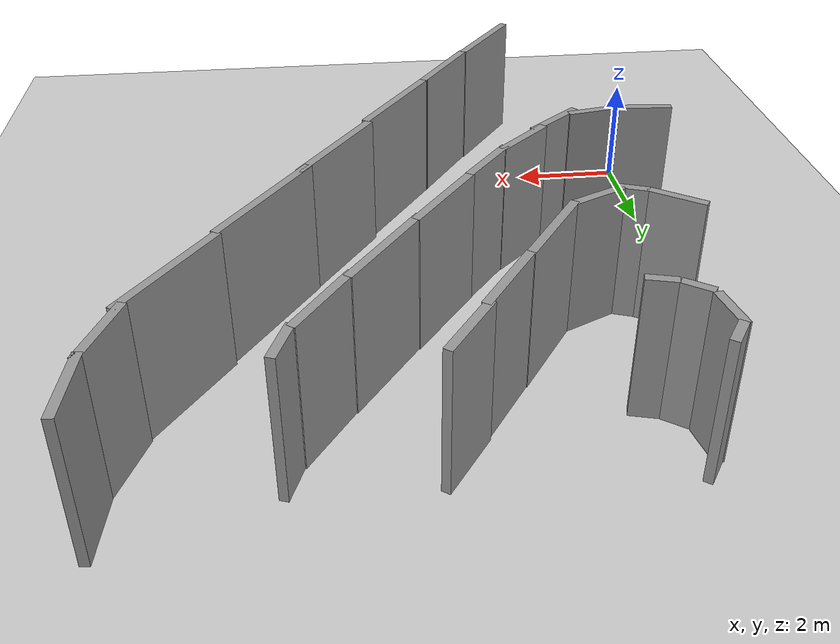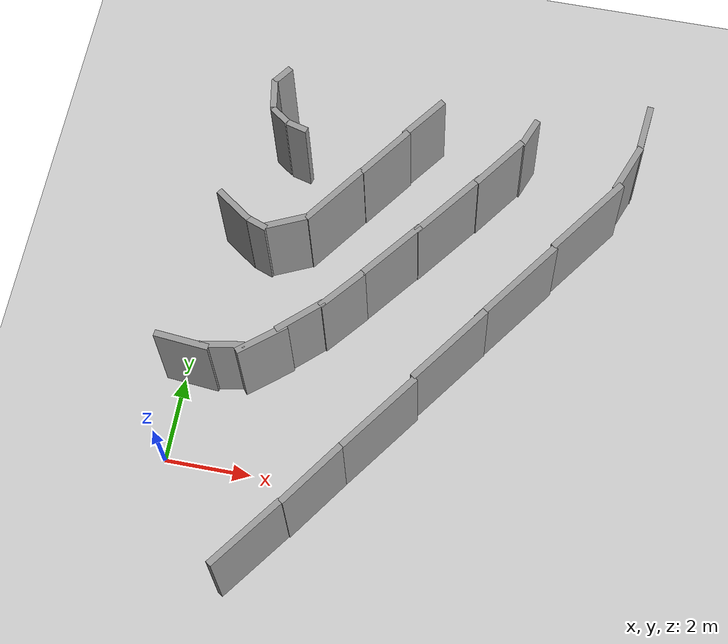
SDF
<sdf version="1.6">
 <world name="default">
  <model name="ground_plane">
   <static>1</static>
   <link name="link">
    <collision name="collision">
     <geometry><plane><normal>0 0 1</normal><size>100 100</size></plane></geometry>
     <surface><friction><ode><mu>100</mu><mu2>50</mu2></ode></friction></surface>
    </collision>
    <visual name="visual">
     <cast_shadows>0</cast_shadows>
     <geometry><plane><normal>0 0 1</normal><size>100 100</size></plane></geometry>
     <material>
      <script><uri>file://media/materials/scripts/gazebo.material</uri><name>Gazebo/Grey</name></script>
     </material>
    </visual>
   </link>
  </model>
  <model name="c-Snail_v3">
   <link name="Wall_14">
    <pose>-5.26527 -5.8787 0 0 0 -0.010393</pose>
    <visual name="Wall_14_Visual">
     <pose>0 0 1.25 0 -0 0</pose>
     <geometry><box><size>2 0.15 2.5</size></box></geometry>
     <material>
      <script><uri>file://media/materials/scripts/gazebo.material</uri><name>Gazebo/Grey</name></script>
      <ambient>1 1 1 1</ambient>
     </material>
     <meta><layer>0</layer></meta>
    </visual>
    <collision name="Wall_14_Collision">
     <pose>0 0 1.25 0 -0 0</pose>
     <geometry><box><size>2 0.15 2.5</size></box></geometry>
     <surface>
      <friction>
       <ode><mu>1</mu><mu2>1</mu2><fdir1>0 0 0</fdir1><slip1>0</slip1><slip2>0</slip2></ode>
       <torsional>
        <coefficient>1</coefficient>
        <patch_radius>0</patch_radius>
        <surface_radius>0</surface_radius>
        <use_patch_radius>1</use_patch_radius>
        <ode><slip>0</slip></ode>
       </torsional>
      </friction>
      <bounce><restitution_coefficient>0</restitution_coefficient><threshold>1e+06</threshold></bounce>
      <contact>
       <collide_without_contact>0</collide_without_contact>
       <collide_without_contact_bitmask>1</collide_without_contact_bitmask>
       <collide_bitmask>1</collide_bitmask>
       <ode>
        <soft_cfm>0</soft_cfm>
        <soft_erp>0.2</soft_erp>
        <kp>1e+13</kp>
        <kd>1</kd>
        <max_vel>0.01</max_vel>
        <min_depth>0</min_depth>
       </ode>
       <bullet>
        <split_impulse>1</split_impulse>
        <split_impulse_penetration_threshold>-0.01</split_impulse_penetration_threshold>
        <soft_cfm>0</soft_cfm>
        <soft_erp>0.2</soft_erp>
        <kp>1e+13</kp>
        <kd>1</kd>
       </bullet>
      </contact>
     </surface>
    </collision>
   </link>
   <link name="Wall_15">
    <pose>-3.40013 -5.89719 0 0 -0 0.01305</pose>
    <visual name="Wall_15_Visual">
     <pose>0 0 1.25 0 -0 0</pose>
     <geometry><box><size>1.77919 0.15 2.5</size></box></geometry>
     <material>
      <script><uri>file://media/materials/scripts/gazebo.material</uri><name>Gazebo/Grey</name></script>
      <ambient>1 1 1 1</ambient>
     </material>
     <meta><layer>0</layer></meta>
    </visual>
    <collision name="Wall_15_Collision">
     <pose>0 0 1.25 0 -0 0</pose>
     <geometry><box><size>1.77919 0.15 2.5</size></box></geometry>
     <surface>
      <friction>
       <ode><mu>1</mu><mu2>1</mu2><fdir1>0 0 0</fdir1><slip1>0</slip1><slip2>0</slip2></ode>
       <torsional>
        <coefficient>1</coefficient>
        <patch_radius>0</patch_radius>
        <surface_radius>0</surface_radius>
        <use_patch_radius>1</use_patch_radius>
        <ode><slip>0</slip></ode>
       </torsional>
      </friction>
      <bounce><restitution_coefficient>0</restitution_coefficient><threshold>1e+06</threshold></bounce>
      <contact>
       <collide_without_contact>0</collide_without_contact>
       <collide_without_contact_bitmask>1</collide_without_contact_bitmask>
       <collide_bitmask>1</collide_bitmask>
       <ode>
        <soft_cfm>0</soft_cfm>
        <soft_erp>0.2</soft_erp>
        <kp>1e+13</kp>
        <kd>1</kd>
        <max_vel>0.01</max_vel>
        <min_depth>0</min_depth>
       </ode>
       <bullet>
        <split_impulse>1</split_impulse>
        <split_impulse_penetration_threshold>-0.01</split_impulse_penetration_threshold>
        <soft_cfm>0</soft_cfm>
        <soft_erp>0.2</soft_erp>
        <kp>1e+13</kp>
        <kd>1</kd>
       </bullet>
      </contact>
     </surface>
    </collision>
   </link>
   <link name="Wall_18">
    <pose>-1.42808 -5.88586 0 0 -0 0</pose>
    <visual name="Wall_18_Visual">
     <pose>0 0 1.25 0 -0 0</pose>
     <geometry><box><size>2.25 0.15 2.5</size></box></geometry>
     <material>
      <script><uri>file://media/materials/scripts/gazebo.material</uri><name>Gazebo/Grey</name></script>
      <ambient>1 1 1 1</ambient>
     </material>
     <meta><layer>0</layer></meta>
    </visual>
    <collision name="Wall_18_Collision">
     <pose>0 0 1.25 0 -0 0</pose>
     <geometry><box><size>2.25 0.15 2.5</size></box></geometry>
     <surface>
      <friction>
       <ode><mu>1</mu><mu2>1</mu2><fdir1>0 0 0</fdir1><slip1>0</slip1><slip2>0</slip2></ode>
       <torsional>
        <coefficient>1</coefficient>
        <patch_radius>0</patch_radius>
        <surface_radius>0</surface_radius>
        <use_patch_radius>1</use_patch_radius>
        <ode><slip>0</slip></ode>
       </torsional>
      </friction>
      <bounce><restitution_coefficient>0</restitution_coefficient><threshold>1e+06</threshold></bounce>
      <contact>
       <collide_without_contact>0</collide_without_contact>
       <collide_without_contact_bitmask>1</collide_without_contact_bitmask>
       <collide_bitmask>1</collide_bitmask>
       <ode>
        <soft_cfm>0</soft_cfm>
        <soft_erp>0.2</soft_erp>
        <kp>1e+13</kp>
        <kd>1</kd>
        <max_vel>0.01</max_vel>
        <min_depth>0</min_depth>
       </ode>
       <bullet>
        <split_impulse>1</split_impulse>
        <split_impulse_penetration_threshold>-0.01</split_impulse_penetration_threshold>
        <soft_cfm>0</soft_cfm>
        <soft_erp>0.2</soft_erp>
        <kp>1e+13</kp>
        <kd>1</kd>
       </bullet>
      </contact>
     </surface>
    </collision>
   </link>
   <link name="Wall_19">
    <pose>0.800174 -5.81597 0 0 -0 0</pose>
    <visual name="Wall_19_Visual">
     <pose>0 0 1.25 0 -0 0</pose>
     <geometry><box><size>2.25 0.15 2.5</size></box></geometry>
     <material>
      <script><uri>file://media/materials/scripts/gazebo.material</uri><name>Gazebo/Grey</name></script>
      <ambient>1 1 1 1</ambient>
     </material>
     <meta><layer>0</layer></meta>
    </visual>
    <collision name="Wall_19_Collision">
     <pose>0 0 1.25 0 -0 0</pose>
     <geometry><box><size>2.25 0.15 2.5</size></box></geometry>
     <surface>
      <friction>
       <ode><mu>1</mu><mu2>1</mu2><fdir1>0 0 0</fdir1><slip1>0</slip1><slip2>0</slip2></ode>
       <torsional>
        <coefficient>1</coefficient>
        <patch_radius>0</patch_radius>
        <surface_radius>0</surface_radius>
        <use_patch_radius>1</use_patch_radius>
        <ode><slip>0</slip></ode>
       </torsional>
      </friction>
      <bounce><restitution_coefficient>0</restitution_coefficient><threshold>1e+06</threshold></bounce>
      <contact>
       <collide_without_contact>0</collide_without_contact>
       <collide_without_contact_bitmask>1</collide_without_contact_bitmask>
       <collide_bitmask>1</collide_bitmask>
       <ode>
        <soft_cfm>0</soft_cfm>
        <soft_erp>0.2</soft_erp>
        <kp>1e+13</kp>
        <kd>1</kd>
        <max_vel>0.01</max_vel>
        <min_depth>0</min_depth>
       </ode>
       <bullet>
        <split_impulse>1</split_impulse>
        <split_impulse_penetration_threshold>-0.01</split_impulse_penetration_threshold>
        <soft_cfm>0</soft_cfm>
        <soft_erp>0.2</soft_erp>
        <kp>1e+13</kp>
        <kd>1</kd>
       </bullet>
      </contact>
     </surface>
    </collision>
   </link>
   <link name="Wall_20">
    <pose>2.90214 -5.80096 0 0 -0 0</pose>
    <visual name="Wall_20_Visual">
     <pose>0 0 1.25 0 -0 0</pose>
     <geometry><box><size>2.5 0.15 2.5</size></box></geometry>
     <material>
      <script><uri>file://media/materials/scripts/gazebo.material</uri><name>Gazebo/Grey</name></script>
      <ambient>1 1 1 1</ambient>
     </material>
     <meta><layer>0</layer></meta>
    </visual>
    <collision name="Wall_20_Collision">
     <pose>0 0 1.25 0 -0 0</pose>
     <geometry><box><size>2.5 0.15 2.5</size></box></geometry>
     <surface>
      <friction>
       <ode><mu>1</mu><mu2>1</mu2><fdir1>0 0 0</fdir1><slip1>0</slip1><slip2>0</slip2></ode>
       <torsional>
        <coefficient>1</coefficient>
        <patch_radius>0</patch_radius>
        <surface_radius>0</surface_radius>
        <use_patch_radius>1</use_patch_radius>
        <ode><slip>0</slip></ode>
       </torsional>
      </friction>
      <bounce><restitution_coefficient>0</restitution_coefficient><threshold>1e+06</threshold></bounce>
      <contact>
       <collide_without_contact>0</collide_without_contact>
       <collide_without_contact_bitmask>1</collide_without_contact_bitmask>
       <collide_bitmask>1</collide_bitmask>
       <ode>
        <soft_cfm>0</soft_cfm>
        <soft_erp>0.2</soft_erp>
        <kp>1e+13</kp>
        <kd>1</kd>
        <max_vel>0.01</max_vel>
        <min_depth>0</min_depth>
       </ode>
       <bullet>
        <split_impulse>1</split_impulse>
        <split_impulse_penetration_threshold>-0.01</split_impulse_penetration_threshold>
        <soft_cfm>0</soft_cfm>
        <soft_erp>0.2</soft_erp>
        <kp>1e+13</kp>
        <kd>1</kd>
       </bullet>
      </contact>
     </surface>
    </collision>
   </link>
   <link name="Wall_21">
    <pose>5.25228 -5.75509 0 0 -0 0</pose>
    <visual name="Wall_21_Visual">
     <pose>0 0 1.25 0 -0 0</pose>
     <geometry><box><size>2.25 0.15 2.5</size></box></geometry>
     <material>
      <script><uri>file://media/materials/scripts/gazebo.material</uri><name>Gazebo/Grey</name></script>
      <ambient>1 1 1 1</ambient>
     </material>
     <meta><layer>0</layer></meta>
    </visual>
    <collision name="Wall_21_Collision">
     <pose>0 0 1.25 0 -0 0</pose>
     <geometry><box><size>2.25 0.15 2.5</size></box></geometry>
     <surface>
      <friction>
       <ode><mu>1</mu><mu2>1</mu2><fdir1>0 0 0</fdir1><slip1>0</slip1><slip2>0</slip2></ode>
       <torsional>
        <coefficient>1</coefficient>
        <patch_radius>0</patch_radius>
        <surface_radius>0</surface_radius>
        <use_patch_radius>1</use_patch_radius>
        <ode><slip>0</slip></ode>
       </torsional>
      </friction>
      <bounce><restitution_coefficient>0</restitution_coefficient><threshold>1e+06</threshold></bounce>
      <contact>
       <collide_without_contact>0</collide_without_contact>
       <collide_without_contact_bitmask>1</collide_without_contact_bitmask>
       <collide_bitmask>1</collide_bitmask>
       <ode>
        <soft_cfm>0</soft_cfm>
        <soft_erp>0.2</soft_erp>
        <kp>1e+13</kp>
        <kd>1</kd>
        <max_vel>0.01</max_vel>
        <min_depth>0</min_depth>
       </ode>
       <bullet>
        <split_impulse>1</split_impulse>
        <split_impulse_penetration_threshold>-0.01</split_impulse_penetration_threshold>
        <soft_cfm>0</soft_cfm>
        <soft_erp>0.2</soft_erp>
        <kp>1e+13</kp>
        <kd>1</kd>
       </bullet>
      </contact>
     </surface>
    </collision>
   </link>
   <link name="Wall_22">
    <pose>6.78859 -5.56286 0 0 -0 0.261799</pose>
    <visual name="Wall_22_Visual">
     <pose>0 0 1.25 0 -0 0</pose>
     <geometry><box><size>1.25 0.15 2.5</size></box></geometry>
     <material>
      <script><uri>file://media/materials/scripts/gazebo.material</uri><name>Gazebo/Grey</name></script>
      <ambient>1 1 1 1</ambient>
     </material>
     <meta><layer>0</layer></meta>
    </visual>
    <collision name="Wall_22_Collision">
     <pose>0 0 1.25 0 -0 0</pose>
     <geometry><box><size>1.25 0.15 2.5</size></box></geometry>
     <surface>
      <friction>
       <ode><mu>1</mu><mu2>1</mu2><fdir1>0 0 0</fdir1><slip1>0</slip1><slip2>0</slip2></ode>
       <torsional>
        <coefficient>1</coefficient>
        <patch_radius>0</patch_radius>
        <surface_radius>0</surface_radius>
        <use_patch_radius>1</use_patch_radius>
        <ode><slip>0</slip></ode>
       </torsional>
      </friction>
      <bounce><restitution_coefficient>0</restitution_coefficient><threshold>1e+06</threshold></bounce>
      <contact>
       <collide_without_contact>0</collide_without_contact>
       <collide_without_contact_bitmask>1</collide_without_contact_bitmask>
       <collide_bitmask>1</collide_bitmask>
       <ode>
        <soft_cfm>0</soft_cfm>
        <soft_erp>0.2</soft_erp>
        <kp>1e+13</kp>
        <kd>1</kd>
        <max_vel>0.01</max_vel>
        <min_depth>0</min_depth>
       </ode>
       <bullet>
        <split_impulse>1</split_impulse>
        <split_impulse_penetration_threshold>-0.01</split_impulse_penetration_threshold>
        <soft_cfm>0</soft_cfm>
        <soft_erp>0.2</soft_erp>
        <kp>1e+13</kp>
        <kd>1</kd>
       </bullet>
      </contact>
     </surface>
    </collision>
   </link>
   <link name="Wall_23">
    <pose>7.79617 -5.14551 0 0 -0 0.523599</pose>
    <visual name="Wall_23_Visual">
     <pose>0 0 1.25 0 -0 0</pose>
     <geometry><box><size>1.25 0.15 2.5</size></box></geometry>
     <material>
      <script><uri>file://media/materials/scripts/gazebo.material</uri><name>Gazebo/Grey</name></script>
      <ambient>1 1 1 1</ambient>
     </material>
     <meta><layer>0</layer></meta>
    </visual>
    <collision name="Wall_23_Collision">
     <pose>0 0 1.25 0 -0 0</pose>
     <geometry><box><size>1.25 0.15 2.5</size></box></geometry>
     <surface>
      <friction>
       <ode><mu>1</mu><mu2>1</mu2><fdir1>0 0 0</fdir1><slip1>0</slip1><slip2>0</slip2></ode>
       <torsional>
        <coefficient>1</coefficient>
        <patch_radius>0</patch_radius>
        <surface_radius>0</surface_radius>
        <use_patch_radius>1</use_patch_radius>
        <ode><slip>0</slip></ode>
       </torsional>
      </friction>
      <bounce><restitution_coefficient>0</restitution_coefficient><threshold>1e+06</threshold></bounce>
      <contact>
       <collide_without_contact>0</collide_without_contact>
       <collide_without_contact_bitmask>1</collide_without_contact_bitmask>
       <collide_bitmask>1</collide_bitmask>
       <ode>
        <soft_cfm>0</soft_cfm>
        <soft_erp>0.2</soft_erp>
        <kp>1e+13</kp>
        <kd>1</kd>
        <max_vel>0.01</max_vel>
        <min_depth>0</min_depth>
       </ode>
       <bullet>
        <split_impulse>1</split_impulse>
        <split_impulse_penetration_threshold>-0.01</split_impulse_penetration_threshold>
        <soft_cfm>0</soft_cfm>
        <soft_erp>0.2</soft_erp>
        <kp>1e+13</kp>
        <kd>1</kd>
       </bullet>
      </contact>
     </surface>
    </collision>
   </link>
   <link name="Wall_42">
    <pose>-3.35514 -1.67487 0 0 0 -1.0472</pose>
    <visual name="Wall_42_Visual">
     <pose>0 0 1.25 0 -0 0</pose>
     <geometry><box><size>1.25 0.15 2.5</size></box></geometry>
     <material>
      <script><uri>file://media/materials/scripts/gazebo.material</uri><name>Gazebo/Grey</name></script>
      <ambient>1 1 1 1</ambient>
     </material>
     <meta><layer>0</layer></meta>
    </visual>
    <collision name="Wall_42_Collision">
     <pose>0 0 1.25 0 -0 0</pose>
     <geometry><box><size>1.25 0.15 2.5</size></box></geometry>
     <surface>
      <friction>
       <ode><mu>1</mu><mu2>1</mu2><fdir1>0 0 0</fdir1><slip1>0</slip1><slip2>0</slip2></ode>
       <torsional>
        <coefficient>1</coefficient>
        <patch_radius>0</patch_radius>
        <surface_radius>0</surface_radius>
        <use_patch_radius>1</use_patch_radius>
        <ode><slip>0</slip></ode>
       </torsional>
      </friction>
      <bounce><restitution_coefficient>0</restitution_coefficient><threshold>1e+06</threshold></bounce>
      <contact>
       <collide_without_contact>0</collide_without_contact>
       <collide_without_contact_bitmask>1</collide_without_contact_bitmask>
       <collide_bitmask>1</collide_bitmask>
       <ode>
        <soft_cfm>0</soft_cfm>
        <soft_erp>0.2</soft_erp>
        <kp>1e+13</kp>
        <kd>1</kd>
        <max_vel>0.01</max_vel>
        <min_depth>0</min_depth>
       </ode>
       <bullet>
        <split_impulse>1</split_impulse>
        <split_impulse_penetration_threshold>-0.01</split_impulse_penetration_threshold>
        <soft_cfm>0</soft_cfm>
        <soft_erp>0.2</soft_erp>
        <kp>1e+13</kp>
        <kd>1</kd>
       </bullet>
      </contact>
     </surface>
    </collision>
   </link>
   <link name="Wall_43">
    <pose>-2.78966 -2.37241 0 0 0 -0.785398</pose>
    <visual name="Wall_43_Visual">
     <pose>0 0 1.25 0 -0 0</pose>
     <geometry><box><size>1 0.15 2.5</size></box></geometry>
     <material>
      <script><uri>file://media/materials/scripts/gazebo.material</uri><name>Gazebo/Grey</name></script>
      <ambient>1 1 1 1</ambient>
     </material>
     <meta><layer>0</layer></meta>
    </visual>
    <collision name="Wall_43_Collision">
     <pose>0 0 1.25 0 -0 0</pose>
     <geometry><box><size>1 0.15 2.5</size></box></geometry>
     <surface>
      <friction>
       <ode><mu>1</mu><mu2>1</mu2><fdir1>0 0 0</fdir1><slip1>0</slip1><slip2>0</slip2></ode>
       <torsional>
        <coefficient>1</coefficient>
        <patch_radius>0</patch_radius>
        <surface_radius>0</surface_radius>
        <use_patch_radius>1</use_patch_radius>
        <ode><slip>0</slip></ode>
       </torsional>
      </friction>
      <bounce><restitution_coefficient>0</restitution_coefficient><threshold>1e+06</threshold></bounce>
      <contact>
       <collide_without_contact>0</collide_without_contact>
       <collide_without_contact_bitmask>1</collide_without_contact_bitmask>
       <collide_bitmask>1</collide_bitmask>
       <ode>
        <soft_cfm>0</soft_cfm>
        <soft_erp>0.2</soft_erp>
        <kp>1e+13</kp>
        <kd>1</kd>
        <max_vel>0.01</max_vel>
        <min_depth>0</min_depth>
       </ode>
       <bullet>
        <split_impulse>1</split_impulse>
        <split_impulse_penetration_threshold>-0.01</split_impulse_penetration_threshold>
        <soft_cfm>0</soft_cfm>
        <soft_erp>0.2</soft_erp>
        <kp>1e+13</kp>
        <kd>1</kd>
       </bullet>
      </contact>
     </surface>
    </collision>
   </link>
   <link name="Wall_44">
    <pose>-2.07399 -2.86351 0 0 0 -0.261799</pose>
    <visual name="Wall_44_Visual">
     <pose>0 0 1.25 0 -0 0</pose>
     <geometry><box><size>1.25 0.15 2.5</size></box></geometry>
     <material>
      <script><uri>file://media/materials/scripts/gazebo.material</uri><name>Gazebo/Grey</name></script>
      <ambient>1 1 1 1</ambient>
     </material>
     <meta><layer>0</layer></meta>
    </visual>
    <collision name="Wall_44_Collision">
     <pose>0 0 1.25 0 -0 0</pose>
     <geometry><box><size>1.25 0.15 2.5</size></box></geometry>
     <surface>
      <friction>
       <ode><mu>1</mu><mu2>1</mu2><fdir1>0 0 0</fdir1><slip1>0</slip1><slip2>0</slip2></ode>
       <torsional>
        <coefficient>1</coefficient>
        <patch_radius>0</patch_radius>
        <surface_radius>0</surface_radius>
        <use_patch_radius>1</use_patch_radius>
        <ode><slip>0</slip></ode>
       </torsional>
      </friction>
      <bounce><restitution_coefficient>0</restitution_coefficient><threshold>1e+06</threshold></bounce>
      <contact>
       <collide_without_contact>0</collide_without_contact>
       <collide_without_contact_bitmask>1</collide_without_contact_bitmask>
       <collide_bitmask>1</collide_bitmask>
       <ode>
        <soft_cfm>0</soft_cfm>
        <soft_erp>0.2</soft_erp>
        <kp>1e+13</kp>
        <kd>1</kd>
        <max_vel>0.01</max_vel>
        <min_depth>0</min_depth>
       </ode>
       <bullet>
        <split_impulse>1</split_impulse>
        <split_impulse_penetration_threshold>-0.01</split_impulse_penetration_threshold>
        <soft_cfm>0</soft_cfm>
        <soft_erp>0.2</soft_erp>
        <kp>1e+13</kp>
        <kd>1</kd>
       </bullet>
      </contact>
     </surface>
    </collision>
   </link>
   <link name="Wall_45">
    <pose>-1.09897 -3.05219 0 0 0 -0.205287</pose>
    <visual name="Wall_45_Visual">
     <pose>0 0 1.25 0 -0 0</pose>
     <geometry><box><size>1.25 0.15 2.5</size></box></geometry>
     <material>
      <script><uri>file://media/materials/scripts/gazebo.material</uri><name>Gazebo/Grey</name></script>
      <ambient>1 1 1 1</ambient>
     </material>
     <meta><layer>0</layer></meta>
    </visual>
    <collision name="Wall_45_Collision">
     <pose>0 0 1.25 0 -0 0</pose>
     <geometry><box><size>1.25 0.15 2.5</size></box></geometry>
     <surface>
      <friction>
       <ode><mu>1</mu><mu2>1</mu2><fdir1>0 0 0</fdir1><slip1>0</slip1><slip2>0</slip2></ode>
       <torsional>
        <coefficient>1</coefficient>
        <patch_radius>0</patch_radius>
        <surface_radius>0</surface_radius>
        <use_patch_radius>1</use_patch_radius>
        <ode><slip>0</slip></ode>
       </torsional>
      </friction>
      <bounce><restitution_coefficient>0</restitution_coefficient><threshold>1e+06</threshold></bounce>
      <contact>
       <collide_without_contact>0</collide_without_contact>
       <collide_without_contact_bitmask>1</collide_without_contact_bitmask>
       <collide_bitmask>1</collide_bitmask>
       <ode>
        <soft_cfm>0</soft_cfm>
        <soft_erp>0.2</soft_erp>
        <kp>1e+13</kp>
        <kd>1</kd>
        <max_vel>0.01</max_vel>
        <min_depth>0</min_depth>
       </ode>
       <bullet>
        <split_impulse>1</split_impulse>
        <split_impulse_penetration_threshold>-0.01</split_impulse_penetration_threshold>
        <soft_cfm>0</soft_cfm>
        <soft_erp>0.2</soft_erp>
        <kp>1e+13</kp>
        <kd>1</kd>
       </bullet>
      </contact>
     </surface>
    </collision>
   </link>
   <link name="Wall_46">
    <pose>0.001242 -3.22352 -0 0 0 -0.065231</pose>
    <visual name="Wall_46_Visual">
     <pose>0 0 1.25 0 -0 0</pose>
     <geometry><box><size>1.25 0.15 2.5</size></box></geometry>
     <material>
      <script><uri>file://media/materials/scripts/gazebo.material</uri><name>Gazebo/Grey</name></script>
      <ambient>1 1 1 1</ambient>
     </material>
     <meta><layer>0</layer></meta>
    </visual>
    <collision name="Wall_46_Collision">
     <pose>0 0 1.25 0 -0 0</pose>
     <geometry><box><size>1.25 0.15 2.5</size></box></geometry>
     <surface>
      <friction>
       <ode><mu>1</mu><mu2>1</mu2><fdir1>0 0 0</fdir1><slip1>0</slip1><slip2>0</slip2></ode>
       <torsional>
        <coefficient>1</coefficient>
        <patch_radius>0</patch_radius>
        <surface_radius>0</surface_radius>
        <use_patch_radius>1</use_patch_radius>
        <ode><slip>0</slip></ode>
       </torsional>
      </friction>
      <bounce><restitution_coefficient>0</restitution_coefficient><threshold>1e+06</threshold></bounce>
      <contact>
       <collide_without_contact>0</collide_without_contact>
       <collide_without_contact_bitmask>1</collide_without_contact_bitmask>
       <collide_bitmask>1</collide_bitmask>
       <ode>
        <soft_cfm>0</soft_cfm>
        <soft_erp>0.2</soft_erp>
        <kp>1e+13</kp>
        <kd>1</kd>
        <max_vel>0.01</max_vel>
        <min_depth>0</min_depth>
       </ode>
       <bullet>
        <split_impulse>1</split_impulse>
        <split_impulse_penetration_threshold>-0.01</split_impulse_penetration_threshold>
        <soft_cfm>0</soft_cfm>
        <soft_erp>0.2</soft_erp>
        <kp>1e+13</kp>
        <kd>1</kd>
       </bullet>
      </contact>
     </surface>
    </collision>
   </link>
   <link name="Wall_47">
    <pose>1.4692 -3.29142 0 0 0 -0.040966</pose>
    <visual name="Wall_47_Visual">
     <pose>0 0 1.25 0 -0 0</pose>
     <geometry><box><size>1.75 0.15 2.5</size></box></geometry>
     <material>
      <script><uri>file://media/materials/scripts/gazebo.material</uri><name>Gazebo/Grey</name></script>
      <ambient>1 1 1 1</ambient>
     </material>
     <meta><layer>0</layer></meta>
    </visual>
    <collision name="Wall_47_Collision">
     <pose>0 0 1.25 0 -0 0</pose>
     <geometry><box><size>1.75 0.15 2.5</size></box></geometry>
     <surface>
      <friction>
       <ode><mu>1</mu><mu2>1</mu2><fdir1>0 0 0</fdir1><slip1>0</slip1><slip2>0</slip2></ode>
       <torsional>
        <coefficient>1</coefficient>
        <patch_radius>0</patch_radius>
        <surface_radius>0</surface_radius>
        <use_patch_radius>1</use_patch_radius>
        <ode><slip>0</slip></ode>
       </torsional>
      </friction>
      <bounce><restitution_coefficient>0</restitution_coefficient><threshold>1e+06</threshold></bounce>
      <contact>
       <collide_without_contact>0</collide_without_contact>
       <collide_without_contact_bitmask>1</collide_without_contact_bitmask>
       <collide_bitmask>1</collide_bitmask>
       <ode>
        <soft_cfm>0</soft_cfm>
        <soft_erp>0.2</soft_erp>
        <kp>1e+13</kp>
        <kd>1</kd>
        <max_vel>0.01</max_vel>
        <min_depth>0</min_depth>
       </ode>
       <bullet>
        <split_impulse>1</split_impulse>
        <split_impulse_penetration_threshold>-0.01</split_impulse_penetration_threshold>
        <soft_cfm>0</soft_cfm>
        <soft_erp>0.2</soft_erp>
        <kp>1e+13</kp>
        <kd>1</kd>
       </bullet>
      </contact>
     </surface>
    </collision>
   </link>
   <link name="Wall_48">
    <pose>3.18497 -3.36606 0 0 0 -0.02609</pose>
    <visual name="Wall_48_Visual">
     <pose>0 0 1.25 0 -0 0</pose>
     <geometry><box><size>2 0.15 2.5</size></box></geometry>
     <material>
      <script><uri>file://media/materials/scripts/gazebo.material</uri><name>Gazebo/Grey</name></script>
      <ambient>1 1 1 1</ambient>
     </material>
     <meta><layer>0</layer></meta>
    </visual>
    <collision name="Wall_48_Collision">
     <pose>0 0 1.25 0 -0 0</pose>
     <geometry><box><size>2 0.15 2.5</size></box></geometry>
     <surface>
      <friction>
       <ode><mu>1</mu><mu2>1</mu2><fdir1>0 0 0</fdir1><slip1>0</slip1><slip2>0</slip2></ode>
       <torsional>
        <coefficient>1</coefficient>
        <patch_radius>0</patch_radius>
        <surface_radius>0</surface_radius>
        <use_patch_radius>1</use_patch_radius>
        <ode><slip>0</slip></ode>
       </torsional>
      </friction>
      <bounce><restitution_coefficient>0</restitution_coefficient><threshold>1e+06</threshold></bounce>
      <contact>
       <collide_without_contact>0</collide_without_contact>
       <collide_without_contact_bitmask>1</collide_without_contact_bitmask>
       <collide_bitmask>1</collide_bitmask>
       <ode>
        <soft_cfm>0</soft_cfm>
        <soft_erp>0.2</soft_erp>
        <kp>1e+13</kp>
        <kd>1</kd>
        <max_vel>0.01</max_vel>
        <min_depth>0</min_depth>
       </ode>
       <bullet>
        <split_impulse>1</split_impulse>
        <split_impulse_penetration_threshold>-0.01</split_impulse_penetration_threshold>
        <soft_cfm>0</soft_cfm>
        <soft_erp>0.2</soft_erp>
        <kp>1e+13</kp>
        <kd>1</kd>
       </bullet>
      </contact>
     </surface>
    </collision>
   </link>
   <link name="Wall_49">
    <pose>4.78497 -3.4097 0 0 -0 0</pose>
    <visual name="Wall_49_Visual">
     <pose>0 0 1.25 0 -0 0</pose>
     <geometry><box><size>1.5 0.15 2.5</size></box></geometry>
     <material>
      <script><uri>file://media/materials/scripts/gazebo.material</uri><name>Gazebo/Grey</name></script>
      <ambient>1 1 1 1</ambient>
     </material>
     <meta><layer>0</layer></meta>
    </visual>
    <collision name="Wall_49_Collision">
     <pose>0 0 1.25 0 -0 0</pose>
     <geometry><box><size>1.5 0.15 2.5</size></box></geometry>
     <surface>
      <friction>
       <ode><mu>1</mu><mu2>1</mu2><fdir1>0 0 0</fdir1><slip1>0</slip1><slip2>0</slip2></ode>
       <torsional>
        <coefficient>1</coefficient>
        <patch_radius>0</patch_radius>
        <surface_radius>0</surface_radius>
        <use_patch_radius>1</use_patch_radius>
        <ode><slip>0</slip></ode>
       </torsional>
      </friction>
      <bounce><restitution_coefficient>0</restitution_coefficient><threshold>1e+06</threshold></bounce>
      <contact>
       <collide_without_contact>0</collide_without_contact>
       <collide_without_contact_bitmask>1</collide_without_contact_bitmask>
       <collide_bitmask>1</collide_bitmask>
       <ode>
        <soft_cfm>0</soft_cfm>
        <soft_erp>0.2</soft_erp>
        <kp>1e+13</kp>
        <kd>1</kd>
        <max_vel>0.01</max_vel>
        <min_depth>0</min_depth>
       </ode>
       <bullet>
        <split_impulse>1</split_impulse>
        <split_impulse_penetration_threshold>-0.01</split_impulse_penetration_threshold>
        <soft_cfm>0</soft_cfm>
        <soft_erp>0.2</soft_erp>
        <kp>1e+13</kp>
        <kd>1</kd>
       </bullet>
      </contact>
     </surface>
    </collision>
   </link>
   <link name="Wall_50">
    <pose>5.83118 -3.35199 0 0 -0 0.261799</pose>
    <visual name="Wall_50_Visual">
     <pose>0 0 1.25 0 -0 0</pose>
     <geometry><box><size>0.75 0.15 2.5</size></box></geometry>
     <material>
      <script><uri>file://media/materials/scripts/gazebo.material</uri><name>Gazebo/Grey</name></script>
      <ambient>1 1 1 1</ambient>
     </material>
     <meta><layer>0</layer></meta>
    </visual>
    <collision name="Wall_50_Collision">
     <pose>0 0 1.25 0 -0 0</pose>
     <geometry><box><size>0.75 0.15 2.5</size></box></geometry>
     <surface>
      <friction>
       <ode><mu>1</mu><mu2>1</mu2><fdir1>0 0 0</fdir1><slip1>0</slip1><slip2>0</slip2></ode>
       <torsional>
        <coefficient>1</coefficient>
        <patch_radius>0</patch_radius>
        <surface_radius>0</surface_radius>
        <use_patch_radius>1</use_patch_radius>
        <ode><slip>0</slip></ode>
       </torsional>
      </friction>
      <bounce><restitution_coefficient>0</restitution_coefficient><threshold>1e+06</threshold></bounce>
      <contact>
       <collide_without_contact>0</collide_without_contact>
       <collide_without_contact_bitmask>1</collide_without_contact_bitmask>
       <collide_bitmask>1</collide_bitmask>
       <ode>
        <soft_cfm>0</soft_cfm>
        <soft_erp>0.2</soft_erp>
        <kp>1e+13</kp>
        <kd>1</kd>
        <max_vel>0.01</max_vel>
        <min_depth>0</min_depth>
       </ode>
       <bullet>
        <split_impulse>1</split_impulse>
        <split_impulse_penetration_threshold>-0.01</split_impulse_penetration_threshold>
        <soft_cfm>0</soft_cfm>
        <soft_erp>0.2</soft_erp>
        <kp>1e+13</kp>
        <kd>1</kd>
       </bullet>
      </contact>
     </surface>
    </collision>
   </link>
   <link name="Wall_67">
    <pose>-0.316141 0.005293 0 0 0 -1.5708</pose>
    <visual name="Wall_67_Visual">
     <pose>0 0 1.25 0 -0 0</pose>
     <geometry><box><size>1 0.15 2.5</size></box></geometry>
     <material>
      <script><uri>file://media/materials/scripts/gazebo.material</uri><name>Gazebo/Grey</name></script>
      <ambient>1 1 1 1</ambient>
     </material>
     <meta><layer>0</layer></meta>
    </visual>
    <collision name="Wall_67_Collision">
     <pose>0 0 1.25 0 -0 0</pose>
     <geometry><box><size>1 0.15 2.5</size></box></geometry>
     <surface>
      <friction>
       <ode><mu>1</mu><mu2>1</mu2><fdir1>0 0 0</fdir1><slip1>0</slip1><slip2>0</slip2></ode>
       <torsional>
        <coefficient>1</coefficient>
        <patch_radius>0</patch_radius>
        <surface_radius>0</surface_radius>
        <use_patch_radius>1</use_patch_radius>
        <ode><slip>0</slip></ode>
       </torsional>
      </friction>
      <bounce><restitution_coefficient>0</restitution_coefficient><threshold>1e+06</threshold></bounce>
      <contact>
       <collide_without_contact>0</collide_without_contact>
       <collide_without_contact_bitmask>1</collide_without_contact_bitmask>
       <collide_bitmask>1</collide_bitmask>
       <ode>
        <soft_cfm>0</soft_cfm>
        <soft_erp>0.2</soft_erp>
        <kp>1e+13</kp>
        <kd>1</kd>
        <max_vel>0.01</max_vel>
        <min_depth>0</min_depth>
       </ode>
       <bullet>
        <split_impulse>1</split_impulse>
        <split_impulse_penetration_threshold>-0.01</split_impulse_penetration_threshold>
        <soft_cfm>0</soft_cfm>
        <soft_erp>0.2</soft_erp>
        <kp>1e+13</kp>
        <kd>1</kd>
       </bullet>
      </contact>
     </surface>
    </collision>
   </link>
   <link name="Wall_68">
    <pose>-0.252403 -0.700153 0 0 0 -1.309</pose>
    <visual name="Wall_68_Visual">
     <pose>0 0 1.25 0 -0 0</pose>
     <geometry><box><size>0.5 0.15 2.5</size></box></geometry>
     <material>
      <script><uri>file://media/materials/scripts/gazebo.material</uri><name>Gazebo/Grey</name></script>
      <ambient>1 1 1 1</ambient>
     </material>
     <meta><layer>0</layer></meta>
    </visual>
    <collision name="Wall_68_Collision">
     <pose>0 0 1.25 0 -0 0</pose>
     <geometry><box><size>0.5 0.15 2.5</size></box></geometry>
     <surface>
      <friction>
       <ode><mu>1</mu><mu2>1</mu2><fdir1>0 0 0</fdir1><slip1>0</slip1><slip2>0</slip2></ode>
       <torsional>
        <coefficient>1</coefficient>
        <patch_radius>0</patch_radius>
        <surface_radius>0</surface_radius>
        <use_patch_radius>1</use_patch_radius>
        <ode><slip>0</slip></ode>
       </torsional>
      </friction>
      <bounce><restitution_coefficient>0</restitution_coefficient><threshold>1e+06</threshold></bounce>
      <contact>
       <collide_without_contact>0</collide_without_contact>
       <collide_without_contact_bitmask>1</collide_without_contact_bitmask>
       <collide_bitmask>1</collide_bitmask>
       <ode>
        <soft_cfm>0</soft_cfm>
        <soft_erp>0.2</soft_erp>
        <kp>1e+13</kp>
        <kd>1</kd>
        <max_vel>0.01</max_vel>
        <min_depth>0</min_depth>
       </ode>
       <bullet>
        <split_impulse>1</split_impulse>
        <split_impulse_penetration_threshold>-0.01</split_impulse_penetration_threshold>
        <soft_cfm>0</soft_cfm>
        <soft_erp>0.2</soft_erp>
        <kp>1e+13</kp>
        <kd>1</kd>
       </bullet>
      </contact>
     </surface>
    </collision>
   </link>
   <link name="Wall_69">
    <pose>0.240975 -1.11854 0 0 0 -0.523599</pose>
    <visual name="Wall_69_Visual">
     <pose>0 0 1.25 0 -0 0</pose>
     <geometry><box><size>1 0.15 2.5</size></box></geometry>
     <material>
      <script><uri>file://media/materials/scripts/gazebo.material</uri><name>Gazebo/Grey</name></script>
      <ambient>1 1 1 1</ambient>
     </material>
     <meta><layer>0</layer></meta>
    </visual>
    <collision name="Wall_69_Collision">
     <pose>0 0 1.25 0 -0 0</pose>
     <geometry><box><size>1 0.15 2.5</size></box></geometry>
     <surface>
      <friction>
       <ode><mu>1</mu><mu2>1</mu2><fdir1>0 0 0</fdir1><slip1>0</slip1><slip2>0</slip2></ode>
       <torsional>
        <coefficient>1</coefficient>
        <patch_radius>0</patch_radius>
        <surface_radius>0</surface_radius>
        <use_patch_radius>1</use_patch_radius>
        <ode><slip>0</slip></ode>
       </torsional>
      </friction>
      <bounce><restitution_coefficient>0</restitution_coefficient><threshold>1e+06</threshold></bounce>
      <contact>
       <collide_without_contact>0</collide_without_contact>
       <collide_without_contact_bitmask>1</collide_without_contact_bitmask>
       <collide_bitmask>1</collide_bitmask>
       <ode>
        <soft_cfm>0</soft_cfm>
        <soft_erp>0.2</soft_erp>
        <kp>1e+13</kp>
        <kd>1</kd>
        <max_vel>0.01</max_vel>
        <min_depth>0</min_depth>
       </ode>
       <bullet>
        <split_impulse>1</split_impulse>
        <split_impulse_penetration_threshold>-0.01</split_impulse_penetration_threshold>
        <soft_cfm>0</soft_cfm>
        <soft_erp>0.2</soft_erp>
        <kp>1e+13</kp>
        <kd>1</kd>
       </bullet>
      </contact>
     </surface>
    </collision>
   </link>
   <link name="Wall_70">
    <pose>1.50322 -1.37769 0 0 -0 0</pose>
    <visual name="Wall_70_Visual">
     <pose>0 0 1.25 0 -0 0</pose>
     <geometry><box><size>1.75 0.15 2.5</size></box></geometry>
     <material>
      <script><uri>file://media/materials/scripts/gazebo.material</uri><name>Gazebo/Grey</name></script>
      <ambient>1 1 1 1</ambient>
     </material>
     <meta><layer>0</layer></meta>
    </visual>
    <collision name="Wall_70_Collision">
     <pose>0 0 1.25 0 -0 0</pose>
     <geometry><box><size>1.75 0.15 2.5</size></box></geometry>
     <surface>
      <friction>
       <ode><mu>1</mu><mu2>1</mu2><fdir1>0 0 0</fdir1><slip1>0</slip1><slip2>0</slip2></ode>
       <torsional>
        <coefficient>1</coefficient>
        <patch_radius>0</patch_radius>
        <surface_radius>0</surface_radius>
        <use_patch_radius>1</use_patch_radius>
        <ode><slip>0</slip></ode>
       </torsional>
      </friction>
      <bounce><restitution_coefficient>0</restitution_coefficient><threshold>1e+06</threshold></bounce>
      <contact>
       <collide_without_contact>0</collide_without_contact>
       <collide_without_contact_bitmask>1</collide_without_contact_bitmask>
       <collide_bitmask>1</collide_bitmask>
       <ode>
        <soft_cfm>0</soft_cfm>
        <soft_erp>0.2</soft_erp>
        <kp>1e+13</kp>
        <kd>1</kd>
        <max_vel>0.01</max_vel>
        <min_depth>0</min_depth>
       </ode>
       <bullet>
        <split_impulse>1</split_impulse>
        <split_impulse_penetration_threshold>-0.01</split_impulse_penetration_threshold>
        <soft_cfm>0</soft_cfm>
        <soft_erp>0.2</soft_erp>
        <kp>1e+13</kp>
        <kd>1</kd>
       </bullet>
      </contact>
     </surface>
    </collision>
   </link>
   <link name="Wall_71">
    <pose>3.08758 -1.38978 0 0 -0 0</pose>
    <visual name="Wall_71_Visual">
     <pose>0 0 1.25 0 -0 0</pose>
     <geometry><box><size>1.5 0.15 2.5</size></box></geometry>
     <material>
      <script><uri>file://media/materials/scripts/gazebo.material</uri><name>Gazebo/Grey</name></script>
      <ambient>1 1 1 1</ambient>
     </material>
     <meta><layer>0</layer></meta>
    </visual>
    <collision name="Wall_71_Collision">
     <pose>0 0 1.25 0 -0 0</pose>
     <geometry><box><size>1.5 0.15 2.5</size></box></geometry>
     <surface>
      <friction>
       <ode><mu>1</mu><mu2>1</mu2><fdir1>0 0 0</fdir1><slip1>0</slip1><slip2>0</slip2></ode>
       <torsional>
        <coefficient>1</coefficient>
        <patch_radius>0</patch_radius>
        <surface_radius>0</surface_radius>
        <use_patch_radius>1</use_patch_radius>
        <ode><slip>0</slip></ode>
       </torsional>
      </friction>
      <bounce><restitution_coefficient>0</restitution_coefficient><threshold>1e+06</threshold></bounce>
      <contact>
       <collide_without_contact>0</collide_without_contact>
       <collide_without_contact_bitmask>1</collide_without_contact_bitmask>
       <collide_bitmask>1</collide_bitmask>
       <ode>
        <soft_cfm>0</soft_cfm>
        <soft_erp>0.2</soft_erp>
        <kp>1e+13</kp>
        <kd>1</kd>
        <max_vel>0.01</max_vel>
        <min_depth>0</min_depth>
       </ode>
       <bullet>
        <split_impulse>1</split_impulse>
        <split_impulse_penetration_threshold>-0.01</split_impulse_penetration_threshold>
        <soft_cfm>0</soft_cfm>
        <soft_erp>0.2</soft_erp>
        <kp>1e+13</kp>
        <kd>1</kd>
       </bullet>
      </contact>
     </surface>
    </collision>
   </link>
   <link name="Wall_72">
    <pose>4.35541 -1.36839 0 0 0 -0.011462</pose>
    <visual name="Wall_72_Visual">
     <pose>0 0 1.25 0 -0 0</pose>
     <geometry><box><size>1.25 0.15 2.5</size></box></geometry>
     <material>
      <script><uri>file://media/materials/scripts/gazebo.material</uri><name>Gazebo/Grey</name></script>
      <ambient>1 1 1 1</ambient>
     </material>
     <meta><layer>0</layer></meta>
    </visual>
    <collision name="Wall_72_Collision">
     <pose>0 0 1.25 0 -0 0</pose>
     <geometry><box><size>1.25 0.15 2.5</size></box></geometry>
     <surface>
      <friction>
       <ode><mu>1</mu><mu2>1</mu2><fdir1>0 0 0</fdir1><slip1>0</slip1><slip2>0</slip2></ode>
       <torsional>
        <coefficient>1</coefficient>
        <patch_radius>0</patch_radius>
        <surface_radius>0</surface_radius>
        <use_patch_radius>1</use_patch_radius>
        <ode><slip>0</slip></ode>
       </torsional>
      </friction>
      <bounce><restitution_coefficient>0</restitution_coefficient><threshold>1e+06</threshold></bounce>
      <contact>
       <collide_without_contact>0</collide_without_contact>
       <collide_without_contact_bitmask>1</collide_without_contact_bitmask>
       <collide_bitmask>1</collide_bitmask>
       <ode>
        <soft_cfm>0</soft_cfm>
        <soft_erp>0.2</soft_erp>
        <kp>1e+13</kp>
        <kd>1</kd>
        <max_vel>0.01</max_vel>
        <min_depth>0</min_depth>
       </ode>
       <bullet>
        <split_impulse>1</split_impulse>
        <split_impulse_penetration_threshold>-0.01</split_impulse_penetration_threshold>
        <soft_cfm>0</soft_cfm>
        <soft_erp>0.2</soft_erp>
        <kp>1e+13</kp>
        <kd>1</kd>
       </bullet>
      </contact>
     </surface>
    </collision>
   </link>
   <link name="Wall_78">
    <pose>2.01246 1.0051 0 0 -0 1.5708</pose>
    <visual name="Wall_78_Visual">
     <pose>0 0 1.25 0 -0 0</pose>
     <geometry><box><size>0.5 0.15 2.5</size></box></geometry>
     <material>
      <script><uri>file://media/materials/scripts/gazebo.material</uri><name>Gazebo/Grey</name></script>
      <ambient>1 1 1 1</ambient>
     </material>
     <meta><layer>0</layer></meta>
    </visual>
    <collision name="Wall_78_Collision">
     <pose>0 0 1.25 0 -0 0</pose>
     <geometry><box><size>0.5 0.15 2.5</size></box></geometry>
     <surface>
      <friction>
       <ode><mu>1</mu><mu2>1</mu2><fdir1>0 0 0</fdir1><slip1>0</slip1><slip2>0</slip2></ode>
       <torsional>
        <coefficient>1</coefficient>
        <patch_radius>0</patch_radius>
        <surface_radius>0</surface_radius>
        <use_patch_radius>1</use_patch_radius>
        <ode><slip>0</slip></ode>
       </torsional>
      </friction>
      <bounce><restitution_coefficient>0</restitution_coefficient><threshold>1e+06</threshold></bounce>
      <contact>
       <collide_without_contact>0</collide_without_contact>
       <collide_without_contact_bitmask>1</collide_without_contact_bitmask>
       <collide_bitmask>1</collide_bitmask>
       <ode>
        <soft_cfm>0</soft_cfm>
        <soft_erp>0.2</soft_erp>
        <kp>1e+13</kp>
        <kd>1</kd>
        <max_vel>0.01</max_vel>
        <min_depth>0</min_depth>
       </ode>
       <bullet>
        <split_impulse>1</split_impulse>
        <split_impulse_penetration_threshold>-0.01</split_impulse_penetration_threshold>
        <soft_cfm>0</soft_cfm>
        <soft_erp>0.2</soft_erp>
        <kp>1e+13</kp>
        <kd>1</kd>
       </bullet>
      </contact>
     </surface>
    </collision>
   </link>
   <link name="Wall_81">
    <pose>2.09312 0.508262 0 0 -0 1.92174</pose>
    <visual name="Wall_81_Visual">
     <pose>0 0 1.25 0 -0 0</pose>
     <geometry><box><size>0.5 0.15 2.5</size></box></geometry>
     <material>
      <script><uri>file://media/materials/scripts/gazebo.material</uri><name>Gazebo/Grey</name></script>
      <ambient>1 1 1 1</ambient>
     </material>
     <meta><layer>0</layer></meta>
    </visual>
    <collision name="Wall_81_Collision">
     <pose>0 0 1.25 0 -0 0</pose>
     <geometry><box><size>0.5 0.15 2.5</size></box></geometry>
     <surface>
      <friction>
       <ode><mu>1</mu><mu2>1</mu2><fdir1>0 0 0</fdir1><slip1>0</slip1><slip2>0</slip2></ode>
       <torsional>
        <coefficient>1</coefficient>
        <patch_radius>0</patch_radius>
        <surface_radius>0</surface_radius>
        <use_patch_radius>1</use_patch_radius>
        <ode><slip>0</slip></ode>
       </torsional>
      </friction>
      <bounce><restitution_coefficient>0</restitution_coefficient><threshold>1e+06</threshold></bounce>
      <contact>
       <collide_without_contact>0</collide_without_contact>
       <collide_without_contact_bitmask>1</collide_without_contact_bitmask>
       <collide_bitmask>1</collide_bitmask>
       <ode>
        <soft_cfm>0</soft_cfm>
        <soft_erp>0.2</soft_erp>
        <kp>1e+13</kp>
        <kd>1</kd>
        <max_vel>0.01</max_vel>
        <min_depth>0</min_depth>
       </ode>
       <bullet>
        <split_impulse>1</split_impulse>
        <split_impulse_penetration_threshold>-0.01</split_impulse_penetration_threshold>
        <soft_cfm>0</soft_cfm>
        <soft_erp>0.2</soft_erp>
        <kp>1e+13</kp>
        <kd>1</kd>
       </bullet>
      </contact>
     </surface>
    </collision>
   </link>
   <link name="Wall_84">
    <pose>2.7913 1.76389 0 0 -0 3.14159</pose>
    <visual name="Wall_84_Visual">
     <pose>0 0 1.25 0 -0 0</pose>
     <geometry><box><size>0.5 0.15 2.5</size></box></geometry>
     <material>
      <script><uri>file://media/materials/scripts/gazebo.material</uri><name>Gazebo/Grey</name></script>
      <ambient>1 1 1 1</ambient>
     </material>
     <meta><layer>0</layer></meta>
    </visual>
    <collision name="Wall_84_Collision">
     <pose>0 0 1.25 0 -0 0</pose>
     <geometry><box><size>0.5 0.15 2.5</size></box></geometry>
     <surface>
      <friction>
       <ode><mu>1</mu><mu2>1</mu2><fdir1>0 0 0</fdir1><slip1>0</slip1><slip2>0</slip2></ode>
       <torsional>
        <coefficient>1</coefficient>
        <patch_radius>0</patch_radius>
        <surface_radius>0</surface_radius>
        <use_patch_radius>1</use_patch_radius>
        <ode><slip>0</slip></ode>
       </torsional>
      </friction>
      <bounce><restitution_coefficient>0</restitution_coefficient><threshold>1e+06</threshold></bounce>
      <contact>
       <collide_without_contact>0</collide_without_contact>
       <collide_without_contact_bitmask>1</collide_without_contact_bitmask>
       <collide_bitmask>1</collide_bitmask>
       <ode>
        <soft_cfm>0</soft_cfm>
        <soft_erp>0.2</soft_erp>
        <kp>1e+13</kp>
        <kd>1</kd>
        <max_vel>0.01</max_vel>
        <min_depth>0</min_depth>
       </ode>
       <bullet>
        <split_impulse>1</split_impulse>
        <split_impulse_penetration_threshold>-0.01</split_impulse_penetration_threshold>
        <soft_cfm>0</soft_cfm>
        <soft_erp>0.2</soft_erp>
        <kp>1e+13</kp>
        <kd>1</kd>
       </bullet>
      </contact>
     </surface>
    </collision>
   </link>
   <link name="Wall_86">
    <pose>2.31049 1.53977 0 0 0 -2.35619</pose>
    <visual name="Wall_86_Visual">
     <pose>0 0 1.25 0 -0 0</pose>
     <geometry><box><size>0.75 0.15 2.5</size></box></geometry>
     <material>
      <script><uri>file://media/materials/scripts/gazebo.material</uri><name>Gazebo/Grey</name></script>
      <ambient>1 1 1 1</ambient>
     </material>
     <meta><layer>0</layer></meta>
    </visual>
    <collision name="Wall_86_Collision">
     <pose>0 0 1.25 0 -0 0</pose>
     <geometry><box><size>0.75 0.15 2.5</size></box></geometry>
     <surface>
      <friction>
       <ode><mu>1</mu><mu2>1</mu2><fdir1>0 0 0</fdir1><slip1>0</slip1><slip2>0</slip2></ode>
       <torsional>
        <coefficient>1</coefficient>
        <patch_radius>0</patch_radius>
        <surface_radius>0</surface_radius>
        <use_patch_radius>1</use_patch_radius>
        <ode><slip>0</slip></ode>
       </torsional>
      </friction>
      <bounce><restitution_coefficient>0</restitution_coefficient><threshold>1e+06</threshold></bounce>
      <contact>
       <collide_without_contact>0</collide_without_contact>
       <collide_without_contact_bitmask>1</collide_without_contact_bitmask>
       <collide_bitmask>1</collide_bitmask>
       <ode>
        <soft_cfm>0</soft_cfm>
        <soft_erp>0.2</soft_erp>
        <kp>1e+13</kp>
        <kd>1</kd>
        <max_vel>0.01</max_vel>
        <min_depth>0</min_depth>
       </ode>
       <bullet>
        <split_impulse>1</split_impulse>
        <split_impulse_penetration_threshold>-0.01</split_impulse_penetration_threshold>
        <soft_cfm>0</soft_cfm>
        <soft_erp>0.2</soft_erp>
        <kp>1e+13</kp>
        <kd>1</kd>
       </bullet>
      </contact>
     </surface>
    </collision>
   </link>
   <static>1</static>
   <pose>0.756276 5.71208 0 0 -0 0.957297</pose>
  </model>
 </world>
</sdf>
